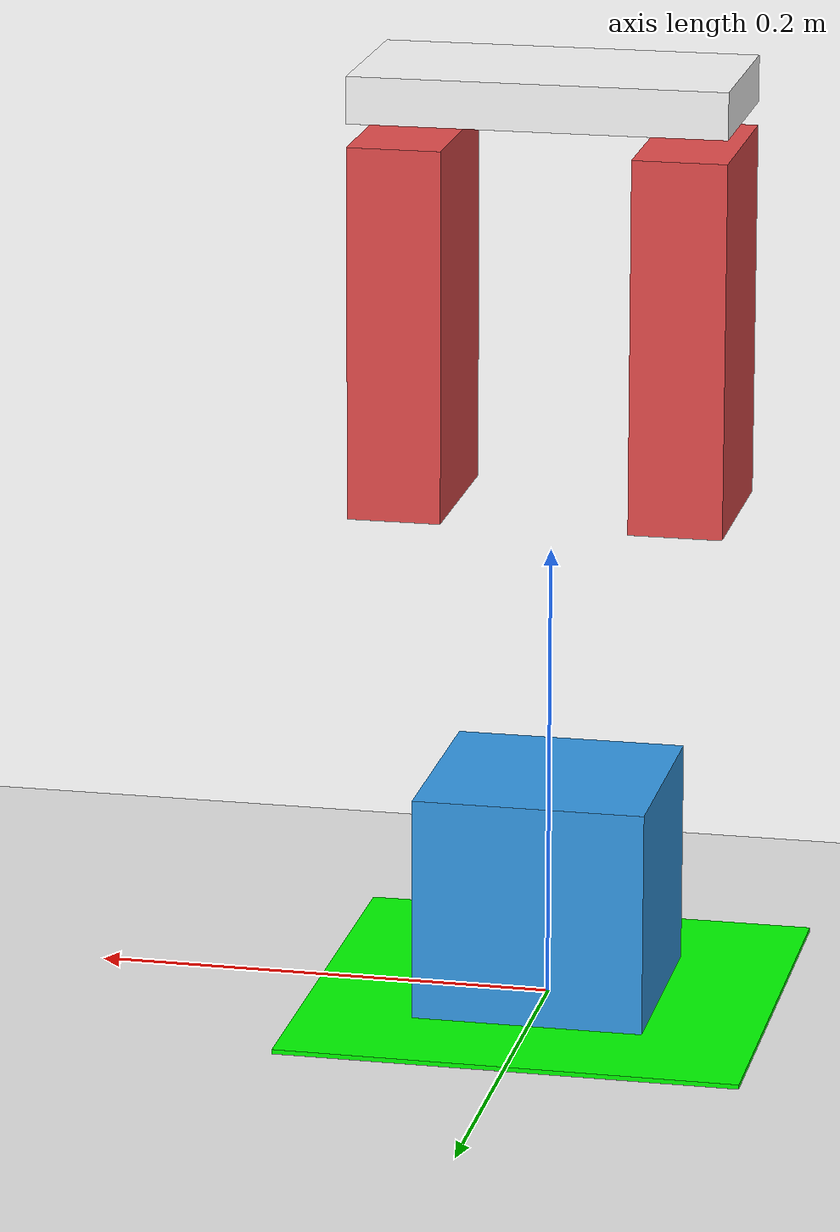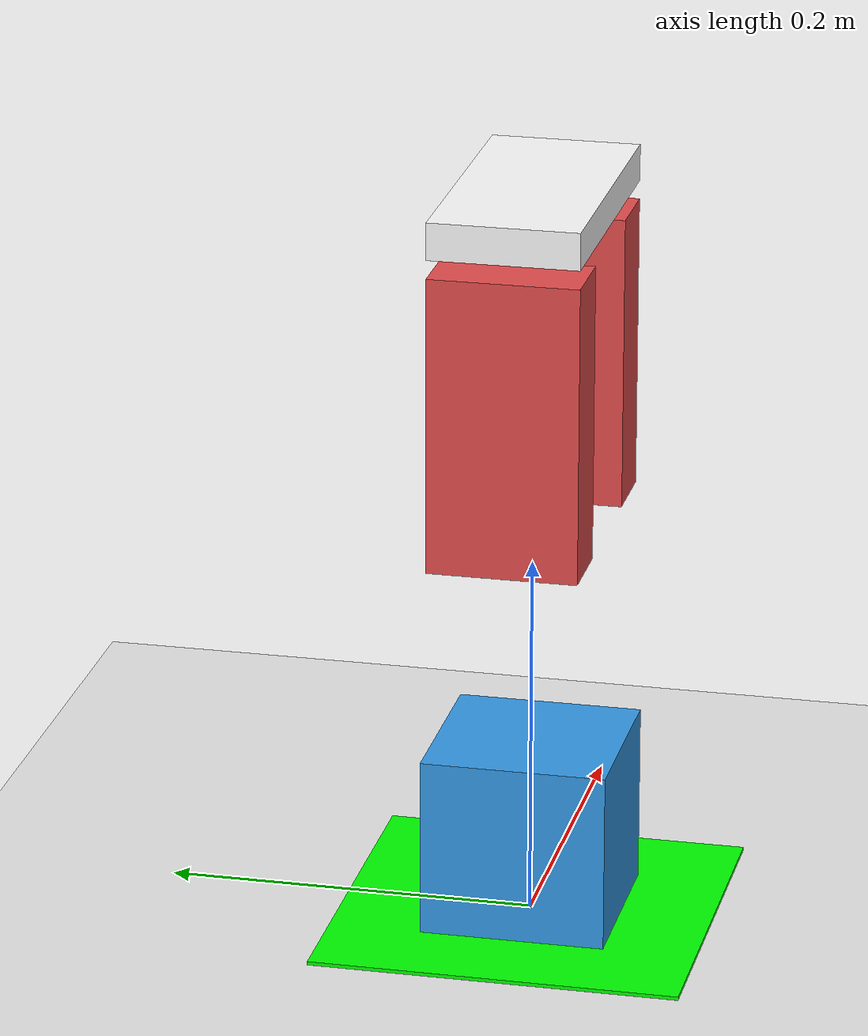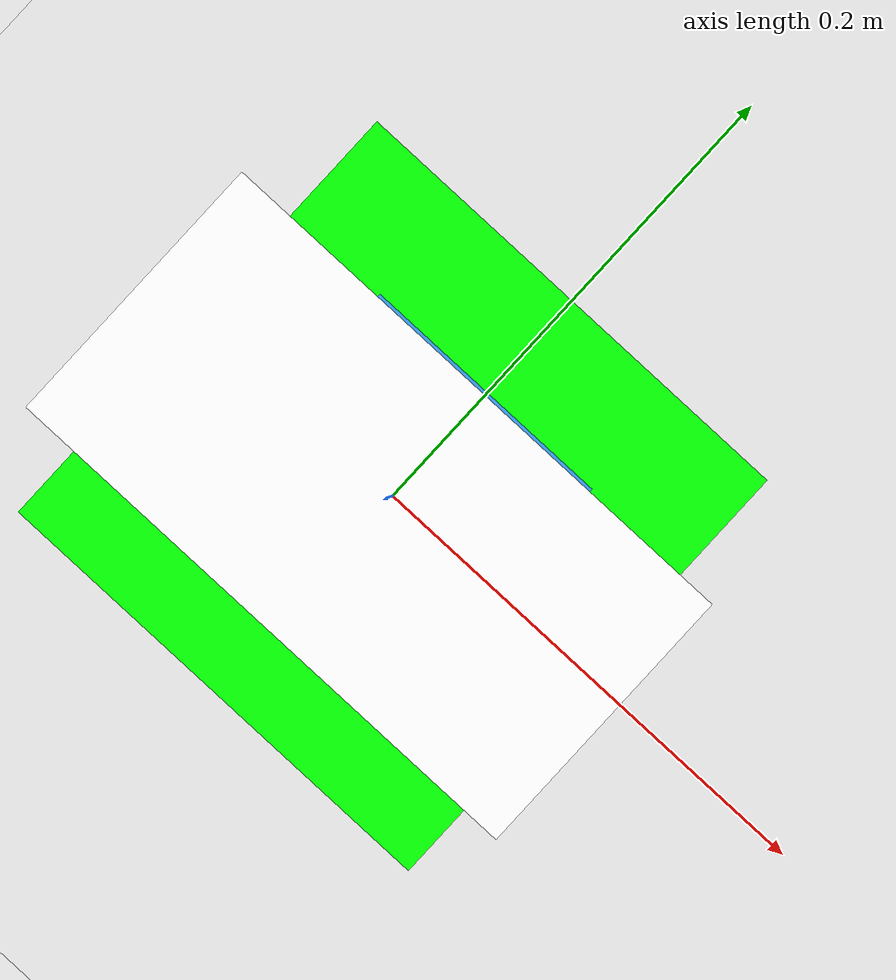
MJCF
<mujoco model="simple_gripper_scene">
    <compiler angle="degree" coordinate="local"/>
    <option gravity="0 0 -9.81" integrator="RK4"/>

    <visual>
        <global offwidth="1280" offheight="720"/>
    </visual>

    <worldbody>
        <light pos="0 0 1.5" type="directional" dir="0 0 -1" diffuse="0.1 0.1 0.1" ambient="0.1 0.1 0.1" specular="0.1 0.1 0.1"/>
        <!-- Ground -->
        <geom name="floor" type="plane" pos="0 0 0" size="5 5 0.1" rgba="0.9 0.9 0.9 1"/>

        <!-- Block -->
        <body name="block" pos="0.0 0.0 0.05">
            <joint type="free" name="block_free"/>
            <geom type="box" size="0.05 0.05 0.05" rgba="0.2 0.6 0.9 1" mass="0.1" friction = "2.0"/>
        </body>

        <!-- Target -->
        <geom name="target" type="box" pos="0 0 0.001" size="0.1 0.1 0.001" rgba="0 1 0 1" mass="0.1"/>

        <!-- Gripper -->
        <body name="gripper" pos="0 0 0.3">
            <!-- sideways motion -->
            <joint name="gripper_leftright" type="slide" axis="1 0 0" range="-6 6" stiffness="20" damping="5"/>
            <joint name="gripper_forwardbackward" type="slide" axis="0 1 0" range="-6 6" stiffness="20" damping="5"/>
            <!-- vertical motion -->
            <joint name="gripper_updown" type="slide" axis="0 0 1" range="-0.19 0.0" stiffness="20" damping="5"/>

            <geom type="box" size="0.08 0.04 0.01" pos="0 0 0.1" mass="0.1" rgba="1 1 1 1"/>

            <!-- Left finger -->
            <body name="left_finger" pos="-0.06 0 0">
                <joint name="left_slide" type="slide" axis="1 0 0" limited="true" range="-0.05 0.02" stiffness="10" damping="5"/>
                <geom type="box" size="0.02 0.04 0.08" rgba="0.9 0.3 0.3 1" mass="0.1" friction = "2.0 0.005 0.0001"/>
            </body>

            <!-- Right finger -->
            <body name="right_finger" pos="0.06 0 0">
                <joint name="right_slide" type="slide" axis="-1 0 0" limited="true" range="-0.05 0.02" stiffness="10" damping="5"/>
                <geom type="box" size="0.02 0.04 0.08" rgba="0.9 0.3 0.3 1" mass="0.1" friction = "2.0 0.005 0.0001"/>
            </body>
        </body>

        <!-- Camera for rendering -->
        <camera name="main_camera" pos="1.5 1.5 1.0" xyaxes="-1.5 1.5 0.0 -1.05 -1.05 4.5"/>
    </worldbody>

    <equality>
        <joint joint1="left_slide" joint2="right_slide"/>
    </equality>

    <actuator>
        <intvelocity name="up/down"
               joint="gripper_updown"
               kp="500" kv="50"
               actrange="-1 1"
               ctrlrange="-1 1"
               ctrllimited="true"/>

        <intvelocity name="left/right"
                    joint="gripper_leftright"
                    kp="400" kv="40"
                    actrange="-1 1"
                    ctrlrange="-1 1"
                    ctrllimited="true"/>

        <intvelocity name="forward/backward"
                    joint="gripper_forwardbackward"
                    kp="400" kv="40"
                    actrange="-1 1"
                    ctrlrange="-1 1"
                    ctrllimited="true"/>

        <intvelocity name="finger"
                    joint="left_slide"
                    kp="300" kv="30"
                    actrange="-0.05 0.1"
                    ctrlrange="-1 1"
                    ctrllimited="true"/>
    </actuator>
</mujoco>
